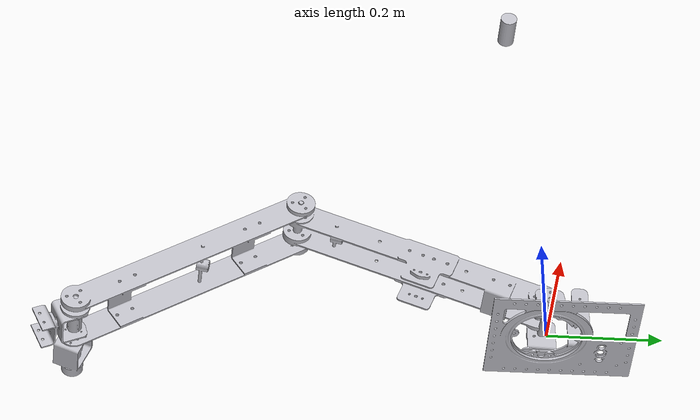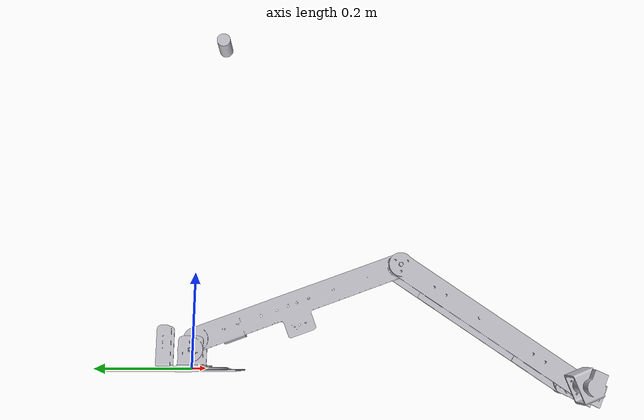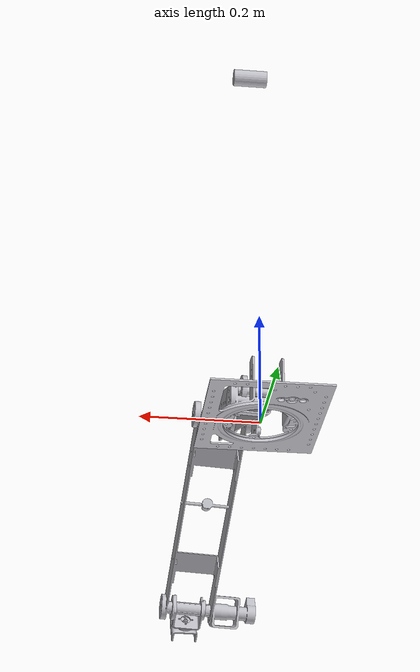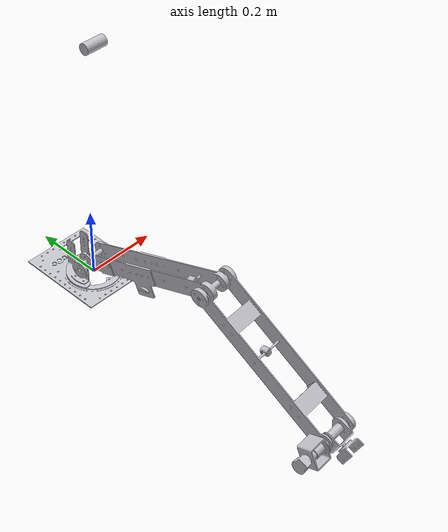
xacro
<?xml version="1.0" ?>
<robot name="arm" xmlns:xacro="http://www.ros.org/wiki/xacro">

<link name="base_link">
  <inertial>
    <origin xyz="-0.0010063158166902576 -0.0023179609946681447 0.0025047768579964246" rpy="0 0 0"/>
    <mass value="0.8402300230207919"/>
    <inertia ixx="0.005299" iyy="0.003467" izz="0.008764" ixy="0.000215" iyz="-0.0" ixz="0.0"/>
  </inertial>
  <visual>
    <origin xyz="0 0 0" rpy="0 0 0"/>
    <geometry>
      <mesh filename="file://$(find arm_description)/meshes/base_link.stl" scale="0.001 0.001 0.001"/>
    </geometry>
    <material name="silver"/>
  </visual>
  <collision>
    <origin xyz="0 0 0" rpy="0 0 0"/>
    <geometry>
      <mesh filename="file://$(find arm_description)/meshes/base_link.stl" scale="0.001 0.001 0.001"/>
    </geometry>
  </collision>
</link>

<link name="waist_1">
  <inertial>
    <origin xyz="-7.702444876018025e-05 0.009830969674369704 0.02300113756943942" rpy="0 0 0"/>
    <mass value="0.8480827984091125"/>
    <inertia ixx="0.001213" iyy="0.002123" izz="0.002523" ixy="-7e-06" iyz="-8.3e-05" ixz="1e-06"/>
  </inertial>
  <visual>
    <origin xyz="-0.00646 0.027932 -0.005" rpy="0 0 0"/>
    <geometry>
      <mesh filename="file://$(find arm_description)/meshes/waist_1.stl" scale="0.001 0.001 0.001"/>
    </geometry>
    <material name="silver"/>
  </visual>
  <collision>
    <origin xyz="-0.00646 0.027932 -0.005" rpy="0 0 0"/>
    <geometry>
      <mesh filename="file://$(find arm_description)/meshes/waist_1.stl" scale="0.001 0.001 0.001"/>
    </geometry>
  </collision>
</link>

<link name="shoulder_1">
  <inertial>
    <origin xyz="2.8948591498393662e-05 -0.004074156190009087 0.23288965236006828" rpy="0 0 0"/>
    <mass value="2.3356160941174426"/>
    <inertia ixx="0.059486" iyy="0.060319" izz="0.002265" ixy="-7e-06" iyz="-0.000522" ixz="5e-06"/>
  </inertial>
  <visual>
    <origin xyz="-0.006461 0.027932 -0.0405" rpy="0 0 0"/>
    <geometry>
      <mesh filename="file://$(find arm_description)/meshes/shoulder_1.stl" scale="0.001 0.001 0.001"/>
    </geometry>
    <material name="silver"/>
  </visual>
  <collision>
    <origin xyz="-0.006461 0.027932 -0.0405" rpy="0 0 0"/>
    <geometry>
      <mesh filename="file://$(find arm_description)/meshes/shoulder_1.stl" scale="0.001 0.001 0.001"/>
    </geometry>
  </collision>
</link>

<link name="forearm_1">
  <inertial>
    <origin xyz="-0.0047246620557192965 0.22397119357725606 0.002083108957369073" rpy="0 0 0"/>
    <mass value="1.9893346240282717"/>
    <inertia ixx="0.050345" iyy="0.004096" izz="0.053666" ixy="0.001691" iyz="-0.000192" ixz="-1e-06"/>
  </inertial>
  <visual>
    <origin xyz="-0.006462 0.028078 -0.4905" rpy="0 0 0"/>
    <geometry>
      <mesh filename="file://$(find arm_description)/meshes/forearm_1.stl" scale="0.001 0.001 0.001"/>
    </geometry>
    <material name="silver"/>
  </visual>
  <collision>
    <origin xyz="-0.006462 0.028078 -0.4905" rpy="0 0 0"/>
    <geometry>
      <mesh filename="file://$(find arm_description)/meshes/forearm_1.stl" scale="0.001 0.001 0.001"/>
    </geometry>
  </collision>
</link>

<link name="wrist_1_1">
  <inertial>
    <origin xyz="-0.06568494427723634 0.001506419448577545 -0.0013244463243618498" rpy="0 0 0"/>
    <mass value="1.139710997448956"/>
    <inertia ixx="0.000461" iyy="0.002977" izz="0.002995" ixy="-0.00018" iyz="-6.2e-05" ixz="-8.6e-05"/>
  </inertial>
  <visual>
    <origin xyz="-0.002883 -0.421905 -0.492176" rpy="0 0 0"/>
    <geometry>
      <mesh filename="file://$(find arm_description)/meshes/wrist_1_1.stl" scale="0.001 0.001 0.001"/>
    </geometry>
    <material name="silver"/>
  </visual>
  <collision>
    <origin xyz="-0.002883 -0.421905 -0.492176" rpy="0 0 0"/>
    <geometry>
      <mesh filename="file://$(find arm_description)/meshes/wrist_1_1.stl" scale="0.001 0.001 0.001"/>
    </geometry>
  </collision>
</link>

<link name="wrist_2_1">
  <inertial>
    <origin xyz="-0.0001378319350452636 0.017225594312011316 -0.00031580323993046777" rpy="0 0 0"/>
    <mass value="0.1496451428941353"/>
    <inertia ixx="3.6e-05" iyy="6.6e-05" izz="5e-05" ixy="-0.0" iyz="-0.0" ixz="-1e-06"/>
  </inertial>
  <visual>
    <origin xyz="-0.002645 -0.451898 -0.491615" rpy="0 0 0"/>
    <geometry>
      <mesh filename="file://$(find arm_description)/meshes/wrist_2_1.stl" scale="0.001 0.001 0.001"/>
    </geometry>
    <material name="silver"/>
  </visual>
  <collision>
    <origin xyz="-0.002645 -0.451898 -0.491615" rpy="0 0 0"/>
    <geometry>
      <mesh filename="file://$(find arm_description)/meshes/wrist_2_1.stl" scale="0.001 0.001 0.001"/>
    </geometry>
  </collision>
</link>

<link name="gripper_motor">
  <inertial>
    <origin xyz="0.0 0.0 0.0" rpy="0 0 0"/>
    <mass value="1.0"/>
    <inertia ixx="3.5625e-05" iyy="3.5625e-05" izz="1.125e-05" ixy="0.0" iyz="0.0" ixz="0.0"/>
  </inertial>
  <visual>
    <origin xyz="0.0 0.0 0.0" rpy="0 1.57 0"/>
    <geometry>
      <cylinder radius="0.015" length="0.06"/>
    </geometry>
    <material name="silver"/>
  </visual>
  <collision>
    <origin xyz="0.0 0.0 0.0" rpy="0 3.14 0"/>
    <geometry>
      <cylinder radius="0.015" length="0.06"/>
    </geometry>
  </collision>
</link>

<joint name="turret_joint" type="revolute">
  <origin xyz="0.00646 -0.027932 0.005" rpy="0 0 0"/>
  <parent link="base_link"/>
  <child link="waist_1"/>
  <axis xyz="0.0 0.0 1.0"/>
  <limit lower="${-pi/2}" upper="${pi/2}" effort="0.0" velocity="0.0"/>
</joint>

<joint name="shoulder_joint" type="revolute">
  <origin xyz="1e-06 0.0 0.0355" rpy="0 0 0"/>
  <parent link="waist_1"/>
  <child link="shoulder_1"/>
  <axis xyz="-0.999968 -0.007954 0.0"/>
  <limit lower="${-pi/2}" upper="-0.17" effort="0.0" velocity="0.0"/>
</joint>

<joint name="elbow_joint" type="revolute">
  <origin xyz="1e-06 -0.000146 0.45" rpy="0 0 0"/>
  <parent link="shoulder_1"/>
  <child link="forearm_1"/>
  <axis xyz="-0.999968 -0.007954 -0.0"/>
  <limit lower="-0.54" upper="0.42" effort="0.0" velocity="0.0"/>
</joint>

<joint name="wrist_pitch" type="revolute">
  <origin xyz="-0.003579 0.449983 0.001676" rpy="0 0 0"/>
  <parent link="forearm_1"/>
  <child link="wrist_1_1"/>
  <axis xyz="-0.999968 -0.007954 -0.0"/>
  <limit lower="${-pi/2}" upper="${pi/2}" effort="0.0" velocity="0.0"/>
</joint>

<joint name="wrist_roll" type="revolute">
  <origin xyz="-0.000238 0.029993 -0.000561" rpy="0 0 0"/>
  <parent link="wrist_1_1"/>
  <child link="wrist_2_1"/>
  <axis xyz="-0.007952 0.999793 -0.018724"/>
  <limit lower="${-pi/2}" upper="${pi/2}" effort="0.0" velocity="0.0"/>
</joint>

<joint name="gripper_motor_joint" type="continuous">
  <origin xyz="0.0 0.029993 -0.000561" rpy="0 0 0"/>
  <parent link="wrist_2_1"/>
  <child link="gripper_motor"/>
  <axis xyz="1 0 0"/>
</joint>

</robot>
